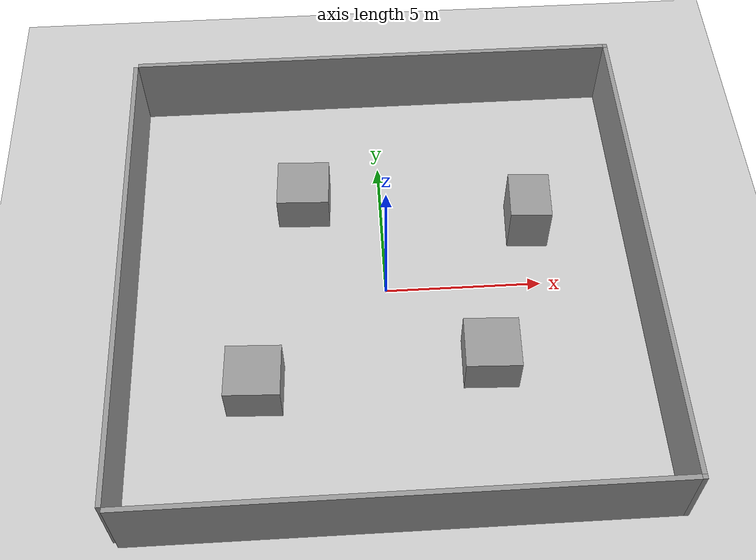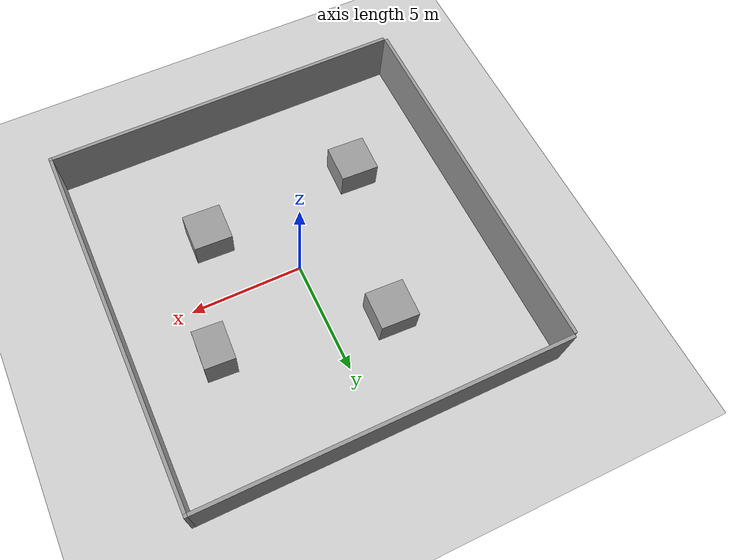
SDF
<sdf version="1.7">
 <world name="default">
  <light name="sun" type="directional">
   <pose>0 0 10 0 -0 0</pose>
   <diffuse>0.8 0.8 0.8 1</diffuse>
   <specular>0.2 0.2 0.2 1</specular>
   <attenuation>
    <range>1000</range>
    <constant>0.9</constant>
    <linear>0.01</linear>
    <quadratic>0.001</quadratic>
   </attenuation>
   <direction>-0.5 0.1 -0.9</direction>
   <spot><inner_angle>0</inner_angle><outer_angle>0</outer_angle><falloff>0</falloff></spot>
  </light>
  <model name="ground_plane">
   <static>1</static>
   <link name="link">
    <collision name="collision">
     <geometry><plane><normal>0 0 1</normal><size>100 100</size></plane></geometry>
     <surface>
      <contact><collide_bitmask>65535</collide_bitmask></contact>
      <friction><ode><mu>100</mu><mu2>50</mu2></ode></friction>
     </surface>
    </collision>
    <visual name="visual">
     <cast_shadows>0</cast_shadows>
     <geometry><plane><normal>0 0 1</normal><size>100 100</size></plane></geometry>
     <material>
      <script><uri>file://media/materials/scripts/gazebo.material</uri><name>Gazebo/Grey</name></script>
     </material>
    </visual>
   </link>
  </model>
  <gravity>0 0 -9.8</gravity>
  <magnetic_field>6e-06 2.3e-05 -4.2e-05</magnetic_field>
  <atmosphere type="adiabatic"/>
  <physics type="ode">
   <max_step_size>0.001</max_step_size>
   <real_time_factor>1</real_time_factor>
   <real_time_update_rate>1000</real_time_update_rate>
  </physics>
  <scene><ambient>0.4 0.4 0.4 1</ambient><background>0.7 0.7 0.7 1</background><shadows>1</shadows></scene>
  <spherical_coordinates>
   <surface_model>EARTH_WGS84</surface_model>
   <latitude_deg>0</latitude_deg>
   <longitude_deg>0</longitude_deg>
   <elevation>0</elevation>
   <heading_deg>0</heading_deg>
  </spherical_coordinates>
  <model name="EmptyWorld_8size">
   <link name="Wall_2">
    <collision name="Wall_2_Collision">
     <geometry><box><size>16 0.15 2.5</size></box></geometry>
     <pose>0 0 1.25 0 -0 0</pose>
    </collision>
    <visual name="Wall_2_Visual">
     <pose>0 0 1.25 0 -0 0</pose>
     <geometry><box><size>16 0.15 2.5</size></box></geometry>
     <material>
      <script><uri>file://media/materials/scripts/gazebo.material</uri><name>Gazebo/Grey</name></script>
      <ambient>1 1 1 1</ambient>
     </material>
     <meta><layer>0</layer></meta>
    </visual>
    <pose>-8.075 -0 0 0 -0 1.5708</pose>
   </link>
   <link name="Wall_4">
    <collision name="Wall_4_Collision">
     <geometry><box><size>16 0.15 2.5</size></box></geometry>
     <pose>0 0 1.25 0 -0 0</pose>
    </collision>
    <visual name="Wall_4_Visual">
     <pose>0 0 1.25 0 -0 0</pose>
     <geometry><box><size>16 0.15 2.5</size></box></geometry>
     <material>
      <script><uri>file://media/materials/scripts/gazebo.material</uri><name>Gazebo/Grey</name></script>
      <ambient>1 1 1 1</ambient>
     </material>
     <meta><layer>0</layer></meta>
    </visual>
    <pose>-0 -8.075 0 0 -0 0</pose>
   </link>
   <link name="Wall_5">
    <collision name="Wall_5_Collision">
     <geometry><box><size>0.15 0.15 2.5</size></box></geometry>
     <pose>0 0 1.25 0 -0 0</pose>
    </collision>
    <visual name="Wall_5_Visual">
     <pose>0 0 1.25 0 -0 0</pose>
     <geometry><box><size>0.15 0.15 2.5</size></box></geometry>
     <material>
      <script><uri>file://media/materials/scripts/gazebo.material</uri><name>Gazebo/Grey</name></script>
      <ambient>1 1 1 1</ambient>
     </material>
     <meta><layer>0</layer></meta>
    </visual>
    <pose>8.075 -8.075 0 0 -0 0</pose>
   </link>
   <link name="Wall_6">
    <collision name="Wall_6_Collision">
     <geometry><box><size>16 0.15 2.5</size></box></geometry>
     <pose>0 0 1.25 0 -0 0</pose>
    </collision>
    <visual name="Wall_6_Visual">
     <pose>0 0 1.25 0 -0 0</pose>
     <geometry><box><size>16 0.15 2.5</size></box></geometry>
     <material>
      <script><uri>file://media/materials/scripts/gazebo.material</uri><name>Gazebo/Grey</name></script>
      <ambient>1 1 1 1</ambient>
     </material>
     <meta><layer>0</layer></meta>
    </visual>
    <pose>8.075 -0 0 0 -0 1.5708</pose>
   </link>
   <link name="Wall_7">
    <collision name="Wall_7_Collision">
     <geometry><box><size>0.15 0.15 2.5</size></box></geometry>
     <pose>0 0 1.25 0 -0 0</pose>
    </collision>
    <visual name="Wall_7_Visual">
     <pose>0 0 1.25 0 -0 0</pose>
     <geometry><box><size>0.15 0.15 2.5</size></box></geometry>
     <material>
      <script><uri>file://media/materials/scripts/gazebo.material</uri><name>Gazebo/Grey</name></script>
      <ambient>1 1 1 1</ambient>
     </material>
     <meta><layer>0</layer></meta>
    </visual>
    <pose>8.075 8.075 0 0 -0 0</pose>
   </link>
   <link name="Wall_8">
    <collision name="Wall_8_Collision">
     <geometry><box><size>16 0.15 2.5</size></box></geometry>
     <pose>0 0 1.25 0 -0 0</pose>
    </collision>
    <visual name="Wall_8_Visual">
     <pose>0 0 1.25 0 -0 0</pose>
     <geometry><box><size>16 0.15 2.5</size></box></geometry>
     <material>
      <script><uri>file://media/materials/scripts/gazebo.material</uri><name>Gazebo/Grey</name></script>
      <ambient>1 1 1 1</ambient>
     </material>
     <meta><layer>0</layer></meta>
    </visual>
    <pose>-0 8.075 0 0 -0 3.14159</pose>
   </link>
   <static>1</static>
  </model>
  <model name="unit_box">
   <pose>4.80066 2.33943 0.846046 3.08418 -1.57079 -3.14159</pose>
   <link name="link">
    <inertial>
     <mass>1</mass>
     <inertia>
      <ixx>0.166667</ixx>
      <ixy>0</ixy>
      <ixz>0</ixz>
      <iyy>0.166667</iyy>
      <iyz>0</iyz>
      <izz>0.166667</izz>
     </inertia>
    </inertial>
    <collision name="collision"><geometry><box><size>1.69209 1.67737 1.32102</size></box></geometry></collision>
    <visual name="visual">
     <geometry><box><size>1.69209 1.67737 1.32102</size></box></geometry>
     <material>
      <script><name>Gazebo/Grey</name><uri>file://media/materials/scripts/gazebo.material</uri></script>
     </material>
    </visual>
   </link>
  </model>
  <model name="unit_box_clone">
   <pose>3.0421 -2.86718 0.66051 0 0 -0.040045</pose>
   <link name="link">
    <inertial>
     <mass>1</mass>
     <inertia>
      <ixx>0.166667</ixx>
      <ixy>0</ixy>
      <ixz>0</ixz>
      <iyy>0.166667</iyy>
      <iyz>0</iyz>
      <izz>0.166667</izz>
     </inertia>
    </inertial>
    <collision name="collision"><geometry><box><size>1.69209 1.67737 1.32102</size></box></geometry></collision>
    <visual name="visual">
     <geometry><box><size>1.69209 1.67737 1.32102</size></box></geometry>
     <material>
      <script><name>Gazebo/Grey</name><uri>file://media/materials/scripts/gazebo.material</uri></script>
     </material>
    </visual>
   </link>
  </model>
  <model name="unit_box_clone_clone">
   <pose>-4.16617 -3.41326 0.660504 0 7e-06 -0.040042</pose>
   <link name="link">
    <inertial>
     <mass>1</mass>
     <inertia>
      <ixx>0.166667</ixx>
      <ixy>0</ixy>
      <ixz>0</ixz>
      <iyy>0.166667</iyy>
      <iyz>0</iyz>
      <izz>0.166667</izz>
     </inertia>
    </inertial>
    <collision name="collision"><geometry><box><size>1.69209 1.67737 1.32102</size></box></geometry></collision>
    <visual name="visual">
     <geometry><box><size>1.69209 1.67737 1.32102</size></box></geometry>
     <material>
      <script><name>Gazebo/Grey</name><uri>file://media/materials/scripts/gazebo.material</uri></script>
     </material>
    </visual>
   </link>
  </model>
  <model name="unit_box_clone_clone_0">
   <pose>-2.52997 3.57974 0.66051 -0 -0 -0.040049</pose>
   <link name="link">
    <inertial>
     <mass>1</mass>
     <inertia>
      <ixx>0.166667</ixx>
      <ixy>0</ixy>
      <ixz>0</ixz>
      <iyy>0.166667</iyy>
      <iyz>0</iyz>
      <izz>0.166667</izz>
     </inertia>
    </inertial>
    <collision name="collision"><geometry><box><size>1.69209 1.67737 1.32102</size></box></geometry></collision>
    <visual name="visual">
     <geometry><box><size>1.69209 1.67737 1.32102</size></box></geometry>
     <material>
      <script><name>Gazebo/Grey</name><uri>file://media/materials/scripts/gazebo.material</uri></script>
     </material>
    </visual>
   </link>
  </model>
 </world>
</sdf>
